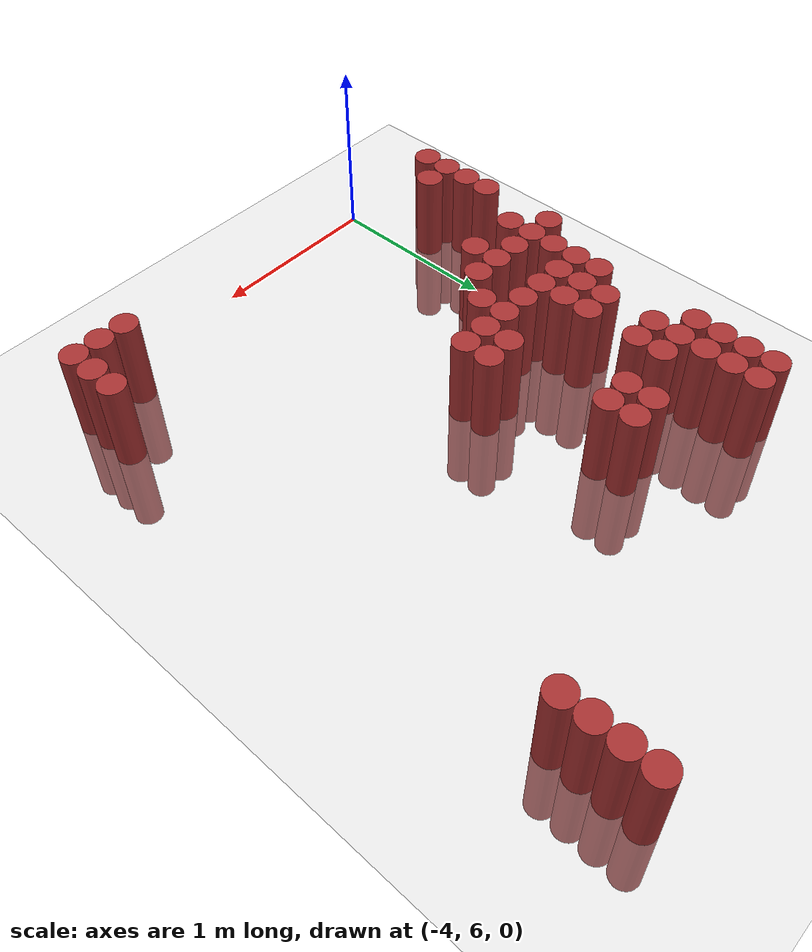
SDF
<sdf version="1.6">
 <world name="default">
  <model name="ground_plane">
   <static>1</static>
   <link name="link">
    <collision name="collision">
     <geometry><plane><normal>0 0 1</normal><size>100 100</size></plane></geometry>
     <surface><friction><ode><mu>100</mu><mu2>50</mu2></ode></friction></surface>
    </collision>
    <visual name="visual">
     <cast_shadows>0</cast_shadows>
     <geometry><plane><normal>0 0 1</normal><size>100 100</size></plane></geometry>
     <material>
      <script><uri>file://media/materials/scripts/gazebo.material</uri><name>Gazebo/Grey</name></script>
     </material>
    </visual>
   </link>
  </model>
  <model name="unit_cylinder_274">
   <static>1</static>
   <pose>-4.275000 6.375000 0.000000 0.000000 0.000000 0.000000</pose>
   <link name="link">
    <inertial>
     <mass>1</mass>
     <inertia><ixx>0.145833</ixx><ixy>0</ixy><ixz>0</ixz><iyy>0.145833</iyy><iyz>0</iyz><izz>0.125</izz></inertia>
    </inertial>
    <collision name="collision">
     <geometry><cylinder><radius>0.075000</radius><length>1</length></cylinder></geometry>
    </collision>
    <visual name="visual">
     <geometry><cylinder><radius>0.075000</radius><length>1</length></cylinder></geometry>
     <material>
      <ambient>0.648000 0.192000 0.192000 1</ambient>
      <diffuse>0.648000 0.192000 0.192000 1</diffuse>
     </material>
     <material>
      <script><name>Gazebo/Grey</name><uri>file://media/materials/scripts/gazebo.material</uri></script>
     </material>
    </visual>
   </link>
  </model>
  <model name="unit_cylinder_275">
   <static>1</static>
   <pose>-4.275000 6.525000 0.000000 0.000000 0.000000 0.000000</pose>
   <link name="link">
    <inertial>
     <mass>1</mass>
     <inertia><ixx>0.145833</ixx><ixy>0</ixy><ixz>0</ixz><iyy>0.145833</iyy><iyz>0</iyz><izz>0.125</izz></inertia>
    </inertial>
    <collision name="collision">
     <geometry><cylinder><radius>0.075000</radius><length>1</length></cylinder></geometry>
    </collision>
    <visual name="visual">
     <geometry><cylinder><radius>0.075000</radius><length>1</length></cylinder></geometry>
     <material>
      <ambient>0.648000 0.192000 0.192000 1</ambient>
      <diffuse>0.648000 0.192000 0.192000 1</diffuse>
     </material>
     <material>
      <script><name>Gazebo/Grey</name><uri>file://media/materials/scripts/gazebo.material</uri></script>
     </material>
    </visual>
   </link>
  </model>
  <model name="unit_cylinder_276">
   <static>1</static>
   <pose>-4.275000 6.675000 0.000000 0.000000 0.000000 0.000000</pose>
   <link name="link">
    <inertial>
     <mass>1</mass>
     <inertia><ixx>0.145833</ixx><ixy>0</ixy><ixz>0</ixz><iyy>0.145833</iyy><iyz>0</iyz><izz>0.125</izz></inertia>
    </inertial>
    <collision name="collision">
     <geometry><cylinder><radius>0.075000</radius><length>1</length></cylinder></geometry>
    </collision>
    <visual name="visual">
     <geometry><cylinder><radius>0.075000</radius><length>1</length></cylinder></geometry>
     <material>
      <ambient>0.648000 0.192000 0.192000 1</ambient>
      <diffuse>0.648000 0.192000 0.192000 1</diffuse>
     </material>
     <material>
      <script><name>Gazebo/Grey</name><uri>file://media/materials/scripts/gazebo.material</uri></script>
     </material>
    </visual>
   </link>
  </model>
  <model name="unit_cylinder_277">
   <static>1</static>
   <pose>-4.275000 6.825000 0.000000 0.000000 0.000000 0.000000</pose>
   <link name="link">
    <inertial>
     <mass>1</mass>
     <inertia><ixx>0.145833</ixx><ixy>0</ixy><ixz>0</ixz><iyy>0.145833</iyy><iyz>0</iyz><izz>0.125</izz></inertia>
    </inertial>
    <collision name="collision">
     <geometry><cylinder><radius>0.075000</radius><length>1</length></cylinder></geometry>
    </collision>
    <visual name="visual">
     <geometry><cylinder><radius>0.075000</radius><length>1</length></cylinder></geometry>
     <material>
      <ambient>0.648000 0.192000 0.192000 1</ambient>
      <diffuse>0.648000 0.192000 0.192000 1</diffuse>
     </material>
     <material>
      <script><name>Gazebo/Grey</name><uri>file://media/materials/scripts/gazebo.material</uri></script>
     </material>
    </visual>
   </link>
  </model>
  <model name="unit_cylinder_278">
   <static>1</static>
   <pose>-4.275000 7.275000 0.000000 0.000000 0.000000 0.000000</pose>
   <link name="link">
    <inertial>
     <mass>1</mass>
     <inertia><ixx>0.145833</ixx><ixy>0</ixy><ixz>0</ixz><iyy>0.145833</iyy><iyz>0</iyz><izz>0.125</izz></inertia>
    </inertial>
    <collision name="collision">
     <geometry><cylinder><radius>0.075000</radius><length>1</length></cylinder></geometry>
    </collision>
    <visual name="visual">
     <geometry><cylinder><radius>0.075000</radius><length>1</length></cylinder></geometry>
     <material>
      <ambient>0.648000 0.192000 0.192000 1</ambient>
      <diffuse>0.648000 0.192000 0.192000 1</diffuse>
     </material>
     <material>
      <script><name>Gazebo/Grey</name><uri>file://media/materials/scripts/gazebo.material</uri></script>
     </material>
    </visual>
   </link>
  </model>
  <model name="unit_cylinder_279">
   <static>1</static>
   <pose>-4.125000 6.525000 0.000000 0.000000 0.000000 0.000000</pose>
   <link name="link">
    <inertial>
     <mass>1</mass>
     <inertia><ixx>0.145833</ixx><ixy>0</ixy><ixz>0</ixz><iyy>0.145833</iyy><iyz>0</iyz><izz>0.125</izz></inertia>
    </inertial>
    <collision name="collision">
     <geometry><cylinder><radius>0.075000</radius><length>1</length></cylinder></geometry>
    </collision>
    <visual name="visual">
     <geometry><cylinder><radius>0.075000</radius><length>1</length></cylinder></geometry>
     <material>
      <ambient>0.648000 0.192000 0.192000 1</ambient>
      <diffuse>0.648000 0.192000 0.192000 1</diffuse>
     </material>
     <material>
      <script><name>Gazebo/Grey</name><uri>file://media/materials/scripts/gazebo.material</uri></script>
     </material>
    </visual>
   </link>
  </model>
  <model name="unit_cylinder_280">
   <static>1</static>
   <pose>-4.125000 7.125000 0.000000 0.000000 0.000000 0.000000</pose>
   <link name="link">
    <inertial>
     <mass>1</mass>
     <inertia><ixx>0.145833</ixx><ixy>0</ixy><ixz>0</ixz><iyy>0.145833</iyy><iyz>0</iyz><izz>0.125</izz></inertia>
    </inertial>
    <collision name="collision">
     <geometry><cylinder><radius>0.075000</radius><length>1</length></cylinder></geometry>
    </collision>
    <visual name="visual">
     <geometry><cylinder><radius>0.075000</radius><length>1</length></cylinder></geometry>
     <material>
      <ambient>0.648000 0.192000 0.192000 1</ambient>
      <diffuse>0.648000 0.192000 0.192000 1</diffuse>
     </material>
     <material>
      <script><name>Gazebo/Grey</name><uri>file://media/materials/scripts/gazebo.material</uri></script>
     </material>
    </visual>
   </link>
  </model>
  <model name="unit_cylinder_281">
   <static>1</static>
   <pose>-4.125000 7.275000 0.000000 0.000000 0.000000 0.000000</pose>
   <link name="link">
    <inertial>
     <mass>1</mass>
     <inertia><ixx>0.145833</ixx><ixy>0</ixy><ixz>0</ixz><iyy>0.145833</iyy><iyz>0</iyz><izz>0.125</izz></inertia>
    </inertial>
    <collision name="collision">
     <geometry><cylinder><radius>0.075000</radius><length>1</length></cylinder></geometry>
    </collision>
    <visual name="visual">
     <geometry><cylinder><radius>0.075000</radius><length>1</length></cylinder></geometry>
     <material>
      <ambient>0.648000 0.192000 0.192000 1</ambient>
      <diffuse>0.648000 0.192000 0.192000 1</diffuse>
     </material>
     <material>
      <script><name>Gazebo/Grey</name><uri>file://media/materials/scripts/gazebo.material</uri></script>
     </material>
    </visual>
   </link>
  </model>
  <model name="unit_cylinder_282">
   <static>1</static>
   <pose>-4.125000 7.425000 0.000000 0.000000 0.000000 0.000000</pose>
   <link name="link">
    <inertial>
     <mass>1</mass>
     <inertia><ixx>0.145833</ixx><ixy>0</ixy><ixz>0</ixz><iyy>0.145833</iyy><iyz>0</iyz><izz>0.125</izz></inertia>
    </inertial>
    <collision name="collision">
     <geometry><cylinder><radius>0.075000</radius><length>1</length></cylinder></geometry>
    </collision>
    <visual name="visual">
     <geometry><cylinder><radius>0.075000</radius><length>1</length></cylinder></geometry>
     <material>
      <ambient>0.648000 0.192000 0.192000 1</ambient>
      <diffuse>0.648000 0.192000 0.192000 1</diffuse>
     </material>
     <material>
      <script><name>Gazebo/Grey</name><uri>file://media/materials/scripts/gazebo.material</uri></script>
     </material>
    </visual>
   </link>
  </model>
  <model name="unit_cylinder_283">
   <static>1</static>
   <pose>-4.125000 7.575000 0.000000 0.000000 0.000000 0.000000</pose>
   <link name="link">
    <inertial>
     <mass>1</mass>
     <inertia><ixx>0.145833</ixx><ixy>0</ixy><ixz>0</ixz><iyy>0.145833</iyy><iyz>0</iyz><izz>0.125</izz></inertia>
    </inertial>
    <collision name="collision">
     <geometry><cylinder><radius>0.075000</radius><length>1</length></cylinder></geometry>
    </collision>
    <visual name="visual">
     <geometry><cylinder><radius>0.075000</radius><length>1</length></cylinder></geometry>
     <material>
      <ambient>0.648000 0.192000 0.192000 1</ambient>
      <diffuse>0.648000 0.192000 0.192000 1</diffuse>
     </material>
     <material>
      <script><name>Gazebo/Grey</name><uri>file://media/materials/scripts/gazebo.material</uri></script>
     </material>
    </visual>
   </link>
  </model>
  <model name="unit_cylinder_284">
   <static>1</static>
   <pose>-4.125000 7.725000 0.000000 0.000000 0.000000 0.000000</pose>
   <link name="link">
    <inertial>
     <mass>1</mass>
     <inertia><ixx>0.145833</ixx><ixy>0</ixy><ixz>0</ixz><iyy>0.145833</iyy><iyz>0</iyz><izz>0.125</izz></inertia>
    </inertial>
    <collision name="collision">
     <geometry><cylinder><radius>0.075000</radius><length>1</length></cylinder></geometry>
    </collision>
    <visual name="visual">
     <geometry><cylinder><radius>0.075000</radius><length>1</length></cylinder></geometry>
     <material>
      <ambient>0.648000 0.192000 0.192000 1</ambient>
      <diffuse>0.648000 0.192000 0.192000 1</diffuse>
     </material>
     <material>
      <script><name>Gazebo/Grey</name><uri>file://media/materials/scripts/gazebo.material</uri></script>
     </material>
    </visual>
   </link>
  </model>
  <model name="unit_cylinder_285">
   <static>1</static>
   <pose>-4.125000 8.325000 0.000000 0.000000 0.000000 0.000000</pose>
   <link name="link">
    <inertial>
     <mass>1</mass>
     <inertia><ixx>0.145833</ixx><ixy>0</ixy><ixz>0</ixz><iyy>0.145833</iyy><iyz>0</iyz><izz>0.125</izz></inertia>
    </inertial>
    <collision name="collision">
     <geometry><cylinder><radius>0.075000</radius><length>1</length></cylinder></geometry>
    </collision>
    <visual name="visual">
     <geometry><cylinder><radius>0.075000</radius><length>1</length></cylinder></geometry>
     <material>
      <ambient>0.648000 0.192000 0.192000 1</ambient>
      <diffuse>0.648000 0.192000 0.192000 1</diffuse>
     </material>
     <material>
      <script><name>Gazebo/Grey</name><uri>file://media/materials/scripts/gazebo.material</uri></script>
     </material>
    </visual>
   </link>
  </model>
  <model name="unit_cylinder_286">
   <static>1</static>
   <pose>-4.125000 8.475000 0.000000 0.000000 0.000000 0.000000</pose>
   <link name="link">
    <inertial>
     <mass>1</mass>
     <inertia><ixx>0.145833</ixx><ixy>0</ixy><ixz>0</ixz><iyy>0.145833</iyy><iyz>0</iyz><izz>0.125</izz></inertia>
    </inertial>
    <collision name="collision">
     <geometry><cylinder><radius>0.075000</radius><length>1</length></cylinder></geometry>
    </collision>
    <visual name="visual">
     <geometry><cylinder><radius>0.075000</radius><length>1</length></cylinder></geometry>
     <material>
      <ambient>0.648000 0.192000 0.192000 1</ambient>
      <diffuse>0.648000 0.192000 0.192000 1</diffuse>
     </material>
     <material>
      <script><name>Gazebo/Grey</name><uri>file://media/materials/scripts/gazebo.material</uri></script>
     </material>
    </visual>
   </link>
  </model>
  <model name="unit_cylinder_287">
   <static>1</static>
   <pose>-4.125000 8.625000 0.000000 0.000000 0.000000 0.000000</pose>
   <link name="link">
    <inertial>
     <mass>1</mass>
     <inertia><ixx>0.145833</ixx><ixy>0</ixy><ixz>0</ixz><iyy>0.145833</iyy><iyz>0</iyz><izz>0.125</izz></inertia>
    </inertial>
    <collision name="collision">
     <geometry><cylinder><radius>0.075000</radius><length>1</length></cylinder></geometry>
    </collision>
    <visual name="visual">
     <geometry><cylinder><radius>0.075000</radius><length>1</length></cylinder></geometry>
     <material>
      <ambient>0.648000 0.192000 0.192000 1</ambient>
      <diffuse>0.648000 0.192000 0.192000 1</diffuse>
     </material>
     <material>
      <script><name>Gazebo/Grey</name><uri>file://media/materials/scripts/gazebo.material</uri></script>
     </material>
    </visual>
   </link>
  </model>
  <model name="unit_cylinder_288">
   <static>1</static>
   <pose>-4.125000 8.775000 0.000000 0.000000 0.000000 0.000000</pose>
   <link name="link">
    <inertial>
     <mass>1</mass>
     <inertia><ixx>0.145833</ixx><ixy>0</ixy><ixz>0</ixz><iyy>0.145833</iyy><iyz>0</iyz><izz>0.125</izz></inertia>
    </inertial>
    <collision name="collision">
     <geometry><cylinder><radius>0.075000</radius><length>1</length></cylinder></geometry>
    </collision>
    <visual name="visual">
     <geometry><cylinder><radius>0.075000</radius><length>1</length></cylinder></geometry>
     <material>
      <ambient>0.648000 0.192000 0.192000 1</ambient>
      <diffuse>0.648000 0.192000 0.192000 1</diffuse>
     </material>
     <material>
      <script><name>Gazebo/Grey</name><uri>file://media/materials/scripts/gazebo.material</uri></script>
     </material>
    </visual>
   </link>
  </model>
  <model name="unit_cylinder_289">
   <static>1</static>
   <pose>-3.975000 7.275000 0.000000 0.000000 0.000000 0.000000</pose>
   <link name="link">
    <inertial>
     <mass>1</mass>
     <inertia><ixx>0.145833</ixx><ixy>0</ixy><ixz>0</ixz><iyy>0.145833</iyy><iyz>0</iyz><izz>0.125</izz></inertia>
    </inertial>
    <collision name="collision">
     <geometry><cylinder><radius>0.075000</radius><length>1</length></cylinder></geometry>
    </collision>
    <visual name="visual">
     <geometry><cylinder><radius>0.075000</radius><length>1</length></cylinder></geometry>
     <material>
      <ambient>0.648000 0.192000 0.192000 1</ambient>
      <diffuse>0.648000 0.192000 0.192000 1</diffuse>
     </material>
     <material>
      <script><name>Gazebo/Grey</name><uri>file://media/materials/scripts/gazebo.material</uri></script>
     </material>
    </visual>
   </link>
  </model>
  <model name="unit_cylinder_290">
   <static>1</static>
   <pose>-3.975000 7.575000 0.000000 0.000000 0.000000 0.000000</pose>
   <link name="link">
    <inertial>
     <mass>1</mass>
     <inertia><ixx>0.145833</ixx><ixy>0</ixy><ixz>0</ixz><iyy>0.145833</iyy><iyz>0</iyz><izz>0.125</izz></inertia>
    </inertial>
    <collision name="collision">
     <geometry><cylinder><radius>0.075000</radius><length>1</length></cylinder></geometry>
    </collision>
    <visual name="visual">
     <geometry><cylinder><radius>0.075000</radius><length>1</length></cylinder></geometry>
     <material>
      <ambient>0.648000 0.192000 0.192000 1</ambient>
      <diffuse>0.648000 0.192000 0.192000 1</diffuse>
     </material>
     <material>
      <script><name>Gazebo/Grey</name><uri>file://media/materials/scripts/gazebo.material</uri></script>
     </material>
    </visual>
   </link>
  </model>
  <model name="unit_cylinder_291">
   <static>1</static>
   <pose>-3.975000 7.725000 0.000000 0.000000 0.000000 0.000000</pose>
   <link name="link">
    <inertial>
     <mass>1</mass>
     <inertia><ixx>0.145833</ixx><ixy>0</ixy><ixz>0</ixz><iyy>0.145833</iyy><iyz>0</iyz><izz>0.125</izz></inertia>
    </inertial>
    <collision name="collision">
     <geometry><cylinder><radius>0.075000</radius><length>1</length></cylinder></geometry>
    </collision>
    <visual name="visual">
     <geometry><cylinder><radius>0.075000</radius><length>1</length></cylinder></geometry>
     <material>
      <ambient>0.648000 0.192000 0.192000 1</ambient>
      <diffuse>0.648000 0.192000 0.192000 1</diffuse>
     </material>
     <material>
      <script><name>Gazebo/Grey</name><uri>file://media/materials/scripts/gazebo.material</uri></script>
     </material>
    </visual>
   </link>
  </model>
  <model name="unit_cylinder_292">
   <static>1</static>
   <pose>-3.975000 7.875000 0.000000 0.000000 0.000000 0.000000</pose>
   <link name="link">
    <inertial>
     <mass>1</mass>
     <inertia><ixx>0.145833</ixx><ixy>0</ixy><ixz>0</ixz><iyy>0.145833</iyy><iyz>0</iyz><izz>0.125</izz></inertia>
    </inertial>
    <collision name="collision">
     <geometry><cylinder><radius>0.075000</radius><length>1</length></cylinder></geometry>
    </collision>
    <visual name="visual">
     <geometry><cylinder><radius>0.075000</radius><length>1</length></cylinder></geometry>
     <material>
      <ambient>0.648000 0.192000 0.192000 1</ambient>
      <diffuse>0.648000 0.192000 0.192000 1</diffuse>
     </material>
     <material>
      <script><name>Gazebo/Grey</name><uri>file://media/materials/scripts/gazebo.material</uri></script>
     </material>
    </visual>
   </link>
  </model>
  <model name="unit_cylinder_293">
   <static>1</static>
   <pose>-3.975000 8.175000 0.000000 0.000000 0.000000 0.000000</pose>
   <link name="link">
    <inertial>
     <mass>1</mass>
     <inertia><ixx>0.145833</ixx><ixy>0</ixy><ixz>0</ixz><iyy>0.145833</iyy><iyz>0</iyz><izz>0.125</izz></inertia>
    </inertial>
    <collision name="collision">
     <geometry><cylinder><radius>0.075000</radius><length>1</length></cylinder></geometry>
    </collision>
    <visual name="visual">
     <geometry><cylinder><radius>0.075000</radius><length>1</length></cylinder></geometry>
     <material>
      <ambient>0.648000 0.192000 0.192000 1</ambient>
      <diffuse>0.648000 0.192000 0.192000 1</diffuse>
     </material>
     <material>
      <script><name>Gazebo/Grey</name><uri>file://media/materials/scripts/gazebo.material</uri></script>
     </material>
    </visual>
   </link>
  </model>
  <model name="unit_cylinder_294">
   <static>1</static>
   <pose>-3.975000 8.325000 0.000000 0.000000 0.000000 0.000000</pose>
   <link name="link">
    <inertial>
     <mass>1</mass>
     <inertia><ixx>0.145833</ixx><ixy>0</ixy><ixz>0</ixz><iyy>0.145833</iyy><iyz>0</iyz><izz>0.125</izz></inertia>
    </inertial>
    <collision name="collision">
     <geometry><cylinder><radius>0.075000</radius><length>1</length></cylinder></geometry>
    </collision>
    <visual name="visual">
     <geometry><cylinder><radius>0.075000</radius><length>1</length></cylinder></geometry>
     <material>
      <ambient>0.648000 0.192000 0.192000 1</ambient>
      <diffuse>0.648000 0.192000 0.192000 1</diffuse>
     </material>
     <material>
      <script><name>Gazebo/Grey</name><uri>file://media/materials/scripts/gazebo.material</uri></script>
     </material>
    </visual>
   </link>
  </model>
  <model name="unit_cylinder_295">
   <static>1</static>
   <pose>-3.975000 8.475000 0.000000 0.000000 0.000000 0.000000</pose>
   <link name="link">
    <inertial>
     <mass>1</mass>
     <inertia><ixx>0.145833</ixx><ixy>0</ixy><ixz>0</ixz><iyy>0.145833</iyy><iyz>0</iyz><izz>0.125</izz></inertia>
    </inertial>
    <collision name="collision">
     <geometry><cylinder><radius>0.075000</radius><length>1</length></cylinder></geometry>
    </collision>
    <visual name="visual">
     <geometry><cylinder><radius>0.075000</radius><length>1</length></cylinder></geometry>
     <material>
      <ambient>0.648000 0.192000 0.192000 1</ambient>
      <diffuse>0.648000 0.192000 0.192000 1</diffuse>
     </material>
     <material>
      <script><name>Gazebo/Grey</name><uri>file://media/materials/scripts/gazebo.material</uri></script>
     </material>
    </visual>
   </link>
  </model>
  <model name="unit_cylinder_296">
   <static>1</static>
   <pose>-3.975000 8.625000 0.000000 0.000000 0.000000 0.000000</pose>
   <link name="link">
    <inertial>
     <mass>1</mass>
     <inertia><ixx>0.145833</ixx><ixy>0</ixy><ixz>0</ixz><iyy>0.145833</iyy><iyz>0</iyz><izz>0.125</izz></inertia>
    </inertial>
    <collision name="collision">
     <geometry><cylinder><radius>0.075000</radius><length>1</length></cylinder></geometry>
    </collision>
    <visual name="visual">
     <geometry><cylinder><radius>0.075000</radius><length>1</length></cylinder></geometry>
     <material>
      <ambient>0.648000 0.192000 0.192000 1</ambient>
      <diffuse>0.648000 0.192000 0.192000 1</diffuse>
     </material>
     <material>
      <script><name>Gazebo/Grey</name><uri>file://media/materials/scripts/gazebo.material</uri></script>
     </material>
    </visual>
   </link>
  </model>
  <model name="unit_cylinder_297">
   <static>1</static>
   <pose>-3.975000 8.775000 0.000000 0.000000 0.000000 0.000000</pose>
   <link name="link">
    <inertial>
     <mass>1</mass>
     <inertia><ixx>0.145833</ixx><ixy>0</ixy><ixz>0</ixz><iyy>0.145833</iyy><iyz>0</iyz><izz>0.125</izz></inertia>
    </inertial>
    <collision name="collision">
     <geometry><cylinder><radius>0.075000</radius><length>1</length></cylinder></geometry>
    </collision>
    <visual name="visual">
     <geometry><cylinder><radius>0.075000</radius><length>1</length></cylinder></geometry>
     <material>
      <ambient>0.648000 0.192000 0.192000 1</ambient>
      <diffuse>0.648000 0.192000 0.192000 1</diffuse>
     </material>
     <material>
      <script><name>Gazebo/Grey</name><uri>file://media/materials/scripts/gazebo.material</uri></script>
     </material>
    </visual>
   </link>
  </model>
  <model name="unit_cylinder_298">
   <static>1</static>
   <pose>-3.825000 7.125000 0.000000 0.000000 0.000000 0.000000</pose>
   <link name="link">
    <inertial>
     <mass>1</mass>
     <inertia><ixx>0.145833</ixx><ixy>0</ixy><ixz>0</ixz><iyy>0.145833</iyy><iyz>0</iyz><izz>0.125</izz></inertia>
    </inertial>
    <collision name="collision">
     <geometry><cylinder><radius>0.075000</radius><length>1</length></cylinder></geometry>
    </collision>
    <visual name="visual">
     <geometry><cylinder><radius>0.075000</radius><length>1</length></cylinder></geometry>
     <material>
      <ambient>0.648000 0.192000 0.192000 1</ambient>
      <diffuse>0.648000 0.192000 0.192000 1</diffuse>
     </material>
     <material>
      <script><name>Gazebo/Grey</name><uri>file://media/materials/scripts/gazebo.material</uri></script>
     </material>
    </visual>
   </link>
  </model>
  <model name="unit_cylinder_299">
   <static>1</static>
   <pose>-3.825000 7.275000 0.000000 0.000000 0.000000 0.000000</pose>
   <link name="link">
    <inertial>
     <mass>1</mass>
     <inertia><ixx>0.145833</ixx><ixy>0</ixy><ixz>0</ixz><iyy>0.145833</iyy><iyz>0</iyz><izz>0.125</izz></inertia>
    </inertial>
    <collision name="collision">
     <geometry><cylinder><radius>0.075000</radius><length>1</length></cylinder></geometry>
    </collision>
    <visual name="visual">
     <geometry><cylinder><radius>0.075000</radius><length>1</length></cylinder></geometry>
     <material>
      <ambient>0.648000 0.192000 0.192000 1</ambient>
      <diffuse>0.648000 0.192000 0.192000 1</diffuse>
     </material>
     <material>
      <script><name>Gazebo/Grey</name><uri>file://media/materials/scripts/gazebo.material</uri></script>
     </material>
    </visual>
   </link>
  </model>
  <model name="unit_cylinder_300">
   <static>1</static>
   <pose>-3.825000 7.575000 0.000000 0.000000 0.000000 0.000000</pose>
   <link name="link">
    <inertial>
     <mass>1</mass>
     <inertia><ixx>0.145833</ixx><ixy>0</ixy><ixz>0</ixz><iyy>0.145833</iyy><iyz>0</iyz><izz>0.125</izz></inertia>
    </inertial>
    <collision name="collision">
     <geometry><cylinder><radius>0.075000</radius><length>1</length></cylinder></geometry>
    </collision>
    <visual name="visual">
     <geometry><cylinder><radius>0.075000</radius><length>1</length></cylinder></geometry>
     <material>
      <ambient>0.648000 0.192000 0.192000 1</ambient>
      <diffuse>0.648000 0.192000 0.192000 1</diffuse>
     </material>
     <material>
      <script><name>Gazebo/Grey</name><uri>file://media/materials/scripts/gazebo.material</uri></script>
     </material>
    </visual>
   </link>
  </model>
  <model name="unit_cylinder_301">
   <static>1</static>
   <pose>-3.825000 7.725000 0.000000 0.000000 0.000000 0.000000</pose>
   <link name="link">
    <inertial>
     <mass>1</mass>
     <inertia><ixx>0.145833</ixx><ixy>0</ixy><ixz>0</ixz><iyy>0.145833</iyy><iyz>0</iyz><izz>0.125</izz></inertia>
    </inertial>
    <collision name="collision">
     <geometry><cylinder><radius>0.075000</radius><length>1</length></cylinder></geometry>
    </collision>
    <visual name="visual">
     <geometry><cylinder><radius>0.075000</radius><length>1</length></cylinder></geometry>
     <material>
      <ambient>0.648000 0.192000 0.192000 1</ambient>
      <diffuse>0.648000 0.192000 0.192000 1</diffuse>
     </material>
     <material>
      <script><name>Gazebo/Grey</name><uri>file://media/materials/scripts/gazebo.material</uri></script>
     </material>
    </visual>
   </link>
  </model>
  <model name="unit_cylinder_302">
   <static>1</static>
   <pose>-3.825000 7.875000 0.000000 0.000000 0.000000 0.000000</pose>
   <link name="link">
    <inertial>
     <mass>1</mass>
     <inertia><ixx>0.145833</ixx><ixy>0</ixy><ixz>0</ixz><iyy>0.145833</iyy><iyz>0</iyz><izz>0.125</izz></inertia>
    </inertial>
    <collision name="collision">
     <geometry><cylinder><radius>0.075000</radius><length>1</length></cylinder></geometry>
    </collision>
    <visual name="visual">
     <geometry><cylinder><radius>0.075000</radius><length>1</length></cylinder></geometry>
     <material>
      <ambient>0.648000 0.192000 0.192000 1</ambient>
      <diffuse>0.648000 0.192000 0.192000 1</diffuse>
     </material>
     <material>
      <script><name>Gazebo/Grey</name><uri>file://media/materials/scripts/gazebo.material</uri></script>
     </material>
    </visual>
   </link>
  </model>
  <model name="unit_cylinder_303">
   <static>1</static>
   <pose>-3.825000 8.175000 0.000000 0.000000 0.000000 0.000000</pose>
   <link name="link">
    <inertial>
     <mass>1</mass>
     <inertia><ixx>0.145833</ixx><ixy>0</ixy><ixz>0</ixz><iyy>0.145833</iyy><iyz>0</iyz><izz>0.125</izz></inertia>
    </inertial>
    <collision name="collision">
     <geometry><cylinder><radius>0.075000</radius><length>1</length></cylinder></geometry>
    </collision>
    <visual name="visual">
     <geometry><cylinder><radius>0.075000</radius><length>1</length></cylinder></geometry>
     <material>
      <ambient>0.648000 0.192000 0.192000 1</ambient>
      <diffuse>0.648000 0.192000 0.192000 1</diffuse>
     </material>
     <material>
      <script><name>Gazebo/Grey</name><uri>file://media/materials/scripts/gazebo.material</uri></script>
     </material>
    </visual>
   </link>
  </model>
  <model name="unit_cylinder_304">
   <static>1</static>
   <pose>-3.825000 8.325000 0.000000 0.000000 0.000000 0.000000</pose>
   <link name="link">
    <inertial>
     <mass>1</mass>
     <inertia><ixx>0.145833</ixx><ixy>0</ixy><ixz>0</ixz><iyy>0.145833</iyy><iyz>0</iyz><izz>0.125</izz></inertia>
    </inertial>
    <collision name="collision">
     <geometry><cylinder><radius>0.075000</radius><length>1</length></cylinder></geometry>
    </collision>
    <visual name="visual">
     <geometry><cylinder><radius>0.075000</radius><length>1</length></cylinder></geometry>
     <material>
      <ambient>0.648000 0.192000 0.192000 1</ambient>
      <diffuse>0.648000 0.192000 0.192000 1</diffuse>
     </material>
     <material>
      <script><name>Gazebo/Grey</name><uri>file://media/materials/scripts/gazebo.material</uri></script>
     </material>
    </visual>
   </link>
  </model>
  <model name="unit_cylinder_305">
   <static>1</static>
   <pose>-3.675000 7.275000 0.000000 0.000000 0.000000 0.000000</pose>
   <link name="link">
    <inertial>
     <mass>1</mass>
     <inertia><ixx>0.145833</ixx><ixy>0</ixy><ixz>0</ixz><iyy>0.145833</iyy><iyz>0</iyz><izz>0.125</izz></inertia>
    </inertial>
    <collision name="collision">
     <geometry><cylinder><radius>0.075000</radius><length>1</length></cylinder></geometry>
    </collision>
    <visual name="visual">
     <geometry><cylinder><radius>0.075000</radius><length>1</length></cylinder></geometry>
     <material>
      <ambient>0.648000 0.192000 0.192000 1</ambient>
      <diffuse>0.648000 0.192000 0.192000 1</diffuse>
     </material>
     <material>
      <script><name>Gazebo/Grey</name><uri>file://media/materials/scripts/gazebo.material</uri></script>
     </material>
    </visual>
   </link>
  </model>
  <model name="unit_cylinder_306">
   <static>1</static>
   <pose>-3.675000 7.575000 0.000000 0.000000 0.000000 0.000000</pose>
   <link name="link">
    <inertial>
     <mass>1</mass>
     <inertia><ixx>0.145833</ixx><ixy>0</ixy><ixz>0</ixz><iyy>0.145833</iyy><iyz>0</iyz><izz>0.125</izz></inertia>
    </inertial>
    <collision name="collision">
     <geometry><cylinder><radius>0.075000</radius><length>1</length></cylinder></geometry>
    </collision>
    <visual name="visual">
     <geometry><cylinder><radius>0.075000</radius><length>1</length></cylinder></geometry>
     <material>
      <ambient>0.648000 0.192000 0.192000 1</ambient>
      <diffuse>0.648000 0.192000 0.192000 1</diffuse>
     </material>
     <material>
      <script><name>Gazebo/Grey</name><uri>file://media/materials/scripts/gazebo.material</uri></script>
     </material>
    </visual>
   </link>
  </model>
  <model name="unit_cylinder_307">
   <static>1</static>
   <pose>-3.525000 7.425000 0.000000 0.000000 0.000000 0.000000</pose>
   <link name="link">
    <inertial>
     <mass>1</mass>
     <inertia><ixx>0.145833</ixx><ixy>0</ixy><ixz>0</ixz><iyy>0.145833</iyy><iyz>0</iyz><izz>0.125</izz></inertia>
    </inertial>
    <collision name="collision">
     <geometry><cylinder><radius>0.075000</radius><length>1</length></cylinder></geometry>
    </collision>
    <visual name="visual">
     <geometry><cylinder><radius>0.075000</radius><length>1</length></cylinder></geometry>
     <material>
      <ambient>0.648000 0.192000 0.192000 1</ambient>
      <diffuse>0.648000 0.192000 0.192000 1</diffuse>
     </material>
     <material>
      <script><name>Gazebo/Grey</name><uri>file://media/materials/scripts/gazebo.material</uri></script>
     </material>
    </visual>
   </link>
  </model>
  <model name="unit_cylinder_308">
   <static>1</static>
   <pose>-3.525000 7.575000 0.000000 0.000000 0.000000 0.000000</pose>
   <link name="link">
    <inertial>
     <mass>1</mass>
     <inertia><ixx>0.145833</ixx><ixy>0</ixy><ixz>0</ixz><iyy>0.145833</iyy><iyz>0</iyz><izz>0.125</izz></inertia>
    </inertial>
    <collision name="collision">
     <geometry><cylinder><radius>0.075000</radius><length>1</length></cylinder></geometry>
    </collision>
    <visual name="visual">
     <geometry><cylinder><radius>0.075000</radius><length>1</length></cylinder></geometry>
     <material>
      <ambient>0.648000 0.192000 0.192000 1</ambient>
      <diffuse>0.648000 0.192000 0.192000 1</diffuse>
     </material>
     <material>
      <script><name>Gazebo/Grey</name><uri>file://media/materials/scripts/gazebo.material</uri></script>
     </material>
    </visual>
   </link>
  </model>
  <model name="unit_cylinder_309">
   <static>1</static>
   <pose>-3.525000 8.325000 0.000000 0.000000 0.000000 0.000000</pose>
   <link name="link">
    <inertial>
     <mass>1</mass>
     <inertia><ixx>0.145833</ixx><ixy>0</ixy><ixz>0</ixz><iyy>0.145833</iyy><iyz>0</iyz><izz>0.125</izz></inertia>
    </inertial>
    <collision name="collision">
     <geometry><cylinder><radius>0.075000</radius><length>1</length></cylinder></geometry>
    </collision>
    <visual name="visual">
     <geometry><cylinder><radius>0.075000</radius><length>1</length></cylinder></geometry>
     <material>
      <ambient>0.648000 0.192000 0.192000 1</ambient>
      <diffuse>0.648000 0.192000 0.192000 1</diffuse>
     </material>
     <material>
      <script><name>Gazebo/Grey</name><uri>file://media/materials/scripts/gazebo.material</uri></script>
     </material>
    </visual>
   </link>
  </model>
  <model name="unit_cylinder_310">
   <static>1</static>
   <pose>-3.525000 8.475000 0.000000 0.000000 0.000000 0.000000</pose>
   <link name="link">
    <inertial>
     <mass>1</mass>
     <inertia><ixx>0.145833</ixx><ixy>0</ixy><ixz>0</ixz><iyy>0.145833</iyy><iyz>0</iyz><izz>0.125</izz></inertia>
    </inertial>
    <collision name="collision">
     <geometry><cylinder><radius>0.075000</radius><length>1</length></cylinder></geometry>
    </collision>
    <visual name="visual">
     <geometry><cylinder><radius>0.075000</radius><length>1</length></cylinder></geometry>
     <material>
      <ambient>0.648000 0.192000 0.192000 1</ambient>
      <diffuse>0.648000 0.192000 0.192000 1</diffuse>
     </material>
     <material>
      <script><name>Gazebo/Grey</name><uri>file://media/materials/scripts/gazebo.material</uri></script>
     </material>
    </visual>
   </link>
  </model>
  <model name="unit_cylinder_311">
   <static>1</static>
   <pose>-3.375000 7.575000 0.000000 0.000000 0.000000 0.000000</pose>
   <link name="link">
    <inertial>
     <mass>1</mass>
     <inertia><ixx>0.145833</ixx><ixy>0</ixy><ixz>0</ixz><iyy>0.145833</iyy><iyz>0</iyz><izz>0.125</izz></inertia>
    </inertial>
    <collision name="collision">
     <geometry><cylinder><radius>0.075000</radius><length>1</length></cylinder></geometry>
    </collision>
    <visual name="visual">
     <geometry><cylinder><radius>0.075000</radius><length>1</length></cylinder></geometry>
     <material>
      <ambient>0.648000 0.192000 0.192000 1</ambient>
      <diffuse>0.648000 0.192000 0.192000 1</diffuse>
     </material>
     <material>
      <script><name>Gazebo/Grey</name><uri>file://media/materials/scripts/gazebo.material</uri></script>
     </material>
    </visual>
   </link>
  </model>
  <model name="unit_cylinder_312">
   <static>1</static>
   <pose>-3.375000 7.725000 0.000000 0.000000 0.000000 0.000000</pose>
   <link name="link">
    <inertial>
     <mass>1</mass>
     <inertia><ixx>0.145833</ixx><ixy>0</ixy><ixz>0</ixz><iyy>0.145833</iyy><iyz>0</iyz><izz>0.125</izz></inertia>
    </inertial>
    <collision name="collision">
     <geometry><cylinder><radius>0.075000</radius><length>1</length></cylinder></geometry>
    </collision>
    <visual name="visual">
     <geometry><cylinder><radius>0.075000</radius><length>1</length></cylinder></geometry>
     <material>
      <ambient>0.648000 0.192000 0.192000 1</ambient>
      <diffuse>0.648000 0.192000 0.192000 1</diffuse>
     </material>
     <material>
      <script><name>Gazebo/Grey</name><uri>file://media/materials/scripts/gazebo.material</uri></script>
     </material>
    </visual>
   </link>
  </model>
  <model name="unit_cylinder_313">
   <static>1</static>
   <pose>-3.375000 8.325000 0.000000 0.000000 0.000000 0.000000</pose>
   <link name="link">
    <inertial>
     <mass>1</mass>
     <inertia><ixx>0.145833</ixx><ixy>0</ixy><ixz>0</ixz><iyy>0.145833</iyy><iyz>0</iyz><izz>0.125</izz></inertia>
    </inertial>
    <collision name="collision">
     <geometry><cylinder><radius>0.075000</radius><length>1</length></cylinder></geometry>
    </collision>
    <visual name="visual">
     <geometry><cylinder><radius>0.075000</radius><length>1</length></cylinder></geometry>
     <material>
      <ambient>0.648000 0.192000 0.192000 1</ambient>
      <diffuse>0.648000 0.192000 0.192000 1</diffuse>
     </material>
     <material>
      <script><name>Gazebo/Grey</name><uri>file://media/materials/scripts/gazebo.material</uri></script>
     </material>
    </visual>
   </link>
  </model>
  <model name="unit_cylinder_314">
   <static>1</static>
   <pose>-3.375000 8.475000 0.000000 0.000000 0.000000 0.000000</pose>
   <link name="link">
    <inertial>
     <mass>1</mass>
     <inertia><ixx>0.145833</ixx><ixy>0</ixy><ixz>0</ixz><iyy>0.145833</iyy><iyz>0</iyz><izz>0.125</izz></inertia>
    </inertial>
    <collision name="collision">
     <geometry><cylinder><radius>0.075000</radius><length>1</length></cylinder></geometry>
    </collision>
    <visual name="visual">
     <geometry><cylinder><radius>0.075000</radius><length>1</length></cylinder></geometry>
     <material>
      <ambient>0.648000 0.192000 0.192000 1</ambient>
      <diffuse>0.648000 0.192000 0.192000 1</diffuse>
     </material>
     <material>
      <script><name>Gazebo/Grey</name><uri>file://media/materials/scripts/gazebo.material</uri></script>
     </material>
    </visual>
   </link>
  </model>
  <model name="unit_cylinder_315">
   <static>1</static>
   <pose>-3.225000 7.575000 0.000000 0.000000 0.000000 0.000000</pose>
   <link name="link">
    <inertial>
     <mass>1</mass>
     <inertia><ixx>0.145833</ixx><ixy>0</ixy><ixz>0</ixz><iyy>0.145833</iyy><iyz>0</iyz><izz>0.125</izz></inertia>
    </inertial>
    <collision name="collision">
     <geometry><cylinder><radius>0.075000</radius><length>1</length></cylinder></geometry>
    </collision>
    <visual name="visual">
     <geometry><cylinder><radius>0.075000</radius><length>1</length></cylinder></geometry>
     <material>
      <ambient>0.648000 0.192000 0.192000 1</ambient>
      <diffuse>0.648000 0.192000 0.192000 1</diffuse>
     </material>
     <material>
      <script><name>Gazebo/Grey</name><uri>file://media/materials/scripts/gazebo.material</uri></script>
     </material>
    </visual>
   </link>
  </model>
  <model name="unit_cylinder_316">
   <static>1</static>
   <pose>-3.225000 7.725000 0.000000 0.000000 0.000000 0.000000</pose>
   <link name="link">
    <inertial>
     <mass>1</mass>
     <inertia><ixx>0.145833</ixx><ixy>0</ixy><ixz>0</ixz><iyy>0.145833</iyy><iyz>0</iyz><izz>0.125</izz></inertia>
    </inertial>
    <collision name="collision">
     <geometry><cylinder><radius>0.075000</radius><length>1</length></cylinder></geometry>
    </collision>
    <visual name="visual">
     <geometry><cylinder><radius>0.075000</radius><length>1</length></cylinder></geometry>
     <material>
      <ambient>0.648000 0.192000 0.192000 1</ambient>
      <diffuse>0.648000 0.192000 0.192000 1</diffuse>
     </material>
     <material>
      <script><name>Gazebo/Grey</name><uri>file://media/materials/scripts/gazebo.material</uri></script>
     </material>
    </visual>
   </link>
  </model>
  <model name="unit_cylinder_333">
   <static>1</static>
   <pose>-2.175000 6.225000 0.000000 0.000000 0.000000 0.000000</pose>
   <link name="link">
    <inertial>
     <mass>1</mass>
     <inertia><ixx>0.145833</ixx><ixy>0</ixy><ixz>0</ixz><iyy>0.145833</iyy><iyz>0</iyz><izz>0.125</izz></inertia>
    </inertial>
    <collision name="collision">
     <geometry><cylinder><radius>0.075000</radius><length>1</length></cylinder></geometry>
    </collision>
    <visual name="visual">
     <geometry><cylinder><radius>0.075000</radius><length>1</length></cylinder></geometry>
     <material>
      <ambient>0.648000 0.192000 0.192000 1</ambient>
      <diffuse>0.648000 0.192000 0.192000 1</diffuse>
     </material>
     <material>
      <script><name>Gazebo/Grey</name><uri>file://media/materials/scripts/gazebo.material</uri></script>
     </material>
    </visual>
   </link>
  </model>
  <model name="unit_cylinder_335">
   <static>1</static>
   <pose>-2.025000 6.225000 0.000000 0.000000 0.000000 0.000000</pose>
   <link name="link">
    <inertial>
     <mass>1</mass>
     <inertia><ixx>0.145833</ixx><ixy>0</ixy><ixz>0</ixz><iyy>0.145833</iyy><iyz>0</iyz><izz>0.125</izz></inertia>
    </inertial>
    <collision name="collision">
     <geometry><cylinder><radius>0.075000</radius><length>1</length></cylinder></geometry>
    </collision>
    <visual name="visual">
     <geometry><cylinder><radius>0.075000</radius><length>1</length></cylinder></geometry>
     <material>
      <ambient>0.648000 0.192000 0.192000 1</ambient>
      <diffuse>0.648000 0.192000 0.192000 1</diffuse>
     </material>
     <material>
      <script><name>Gazebo/Grey</name><uri>file://media/materials/scripts/gazebo.material</uri></script>
     </material>
    </visual>
   </link>
  </model>
  <model name="unit_cylinder_336">
   <static>1</static>
   <pose>-2.025000 9.075000 0.000000 0.000000 0.000000 0.000000</pose>
   <link name="link">
    <inertial>
     <mass>1</mass>
     <inertia><ixx>0.145833</ixx><ixy>0</ixy><ixz>0</ixz><iyy>0.145833</iyy><iyz>0</iyz><izz>0.125</izz></inertia>
    </inertial>
    <collision name="collision">
     <geometry><cylinder><radius>0.075000</radius><length>1</length></cylinder></geometry>
    </collision>
    <visual name="visual">
     <geometry><cylinder><radius>0.075000</radius><length>1</length></cylinder></geometry>
     <material>
      <ambient>0.648000 0.192000 0.192000 1</ambient>
      <diffuse>0.648000 0.192000 0.192000 1</diffuse>
     </material>
     <material>
      <script><name>Gazebo/Grey</name><uri>file://media/materials/scripts/gazebo.material</uri></script>
     </material>
    </visual>
   </link>
  </model>
  <model name="unit_cylinder_337">
   <static>1</static>
   <pose>-2.025000 9.225000 0.000000 0.000000 0.000000 0.000000</pose>
   <link name="link">
    <inertial>
     <mass>1</mass>
     <inertia><ixx>0.145833</ixx><ixy>0</ixy><ixz>0</ixz><iyy>0.145833</iyy><iyz>0</iyz><izz>0.125</izz></inertia>
    </inertial>
    <collision name="collision">
     <geometry><cylinder><radius>0.075000</radius><length>1</length></cylinder></geometry>
    </collision>
    <visual name="visual">
     <geometry><cylinder><radius>0.075000</radius><length>1</length></cylinder></geometry>
     <material>
      <ambient>0.648000 0.192000 0.192000 1</ambient>
      <diffuse>0.648000 0.192000 0.192000 1</diffuse>
     </material>
     <material>
      <script><name>Gazebo/Grey</name><uri>file://media/materials/scripts/gazebo.material</uri></script>
     </material>
    </visual>
   </link>
  </model>
  <model name="unit_cylinder_338">
   <static>1</static>
   <pose>-2.025000 9.375000 0.000000 0.000000 0.000000 0.000000</pose>
   <link name="link">
    <inertial>
     <mass>1</mass>
     <inertia><ixx>0.145833</ixx><ixy>0</ixy><ixz>0</ixz><iyy>0.145833</iyy><iyz>0</iyz><izz>0.125</izz></inertia>
    </inertial>
    <collision name="collision">
     <geometry><cylinder><radius>0.075000</radius><length>1</length></cylinder></geometry>
    </collision>
    <visual name="visual">
     <geometry><cylinder><radius>0.075000</radius><length>1</length></cylinder></geometry>
     <material>
      <ambient>0.648000 0.192000 0.192000 1</ambient>
      <diffuse>0.648000 0.192000 0.192000 1</diffuse>
     </material>
     <material>
      <script><name>Gazebo/Grey</name><uri>file://media/materials/scripts/gazebo.material</uri></script>
     </material>
    </visual>
   </link>
  </model>
  <model name="unit_cylinder_339">
   <static>1</static>
   <pose>-2.025000 9.525000 0.000000 0.000000 0.000000 0.000000</pose>
   <link name="link">
    <inertial>
     <mass>1</mass>
     <inertia><ixx>0.145833</ixx><ixy>0</ixy><ixz>0</ixz><iyy>0.145833</iyy><iyz>0</iyz><izz>0.125</izz></inertia>
    </inertial>
    <collision name="collision">
     <geometry><cylinder><radius>0.075000</radius><length>1</length></cylinder></geometry>
    </collision>
    <visual name="visual">
     <geometry><cylinder><radius>0.075000</radius><length>1</length></cylinder></geometry>
     <material>
      <ambient>0.648000 0.192000 0.192000 1</ambient>
      <diffuse>0.648000 0.192000 0.192000 1</diffuse>
     </material>
     <material>
      <script><name>Gazebo/Grey</name><uri>file://media/materials/scripts/gazebo.material</uri></script>
     </material>
    </visual>
   </link>
  </model>
  <model name="unit_cylinder_341">
   <static>1</static>
   <pose>-1.875000 6.225000 0.000000 0.000000 0.000000 0.000000</pose>
   <link name="link">
    <inertial>
     <mass>1</mass>
     <inertia><ixx>0.145833</ixx><ixy>0</ixy><ixz>0</ixz><iyy>0.145833</iyy><iyz>0</iyz><izz>0.125</izz></inertia>
    </inertial>
    <collision name="collision">
     <geometry><cylinder><radius>0.075000</radius><length>1</length></cylinder></geometry>
    </collision>
    <visual name="visual">
     <geometry><cylinder><radius>0.075000</radius><length>1</length></cylinder></geometry>
     <material>
      <ambient>0.648000 0.192000 0.192000 1</ambient>
      <diffuse>0.648000 0.192000 0.192000 1</diffuse>
     </material>
     <material>
      <script><name>Gazebo/Grey</name><uri>file://media/materials/scripts/gazebo.material</uri></script>
     </material>
    </visual>
   </link>
  </model>
  <model name="unit_cylinder_342">
   <static>1</static>
   <pose>-1.875000 6.375000 0.000000 0.000000 0.000000 0.000000</pose>
   <link name="link">
    <inertial>
     <mass>1</mass>
     <inertia><ixx>0.145833</ixx><ixy>0</ixy><ixz>0</ixz><iyy>0.145833</iyy><iyz>0</iyz><izz>0.125</izz></inertia>
    </inertial>
    <collision name="collision">
     <geometry><cylinder><radius>0.075000</radius><length>1</length></cylinder></geometry>
    </collision>
    <visual name="visual">
     <geometry><cylinder><radius>0.075000</radius><length>1</length></cylinder></geometry>
     <material>
      <ambient>0.648000 0.192000 0.192000 1</ambient>
      <diffuse>0.648000 0.192000 0.192000 1</diffuse>
     </material>
     <material>
      <script><name>Gazebo/Grey</name><uri>file://media/materials/scripts/gazebo.material</uri></script>
     </material>
    </visual>
   </link>
  </model>
  <model name="unit_cylinder_343">
   <static>1</static>
   <pose>-1.875000 6.525000 0.000000 0.000000 0.000000 0.000000</pose>
   <link name="link">
    <inertial>
     <mass>1</mass>
     <inertia><ixx>0.145833</ixx><ixy>0</ixy><ixz>0</ixz><iyy>0.145833</iyy><iyz>0</iyz><izz>0.125</izz></inertia>
    </inertial>
    <collision name="collision">
     <geometry><cylinder><radius>0.075000</radius><length>1</length></cylinder></geometry>
    </collision>
    <visual name="visual">
     <geometry><cylinder><radius>0.075000</radius><length>1</length></cylinder></geometry>
     <material>
      <ambient>0.648000 0.192000 0.192000 1</ambient>
      <diffuse>0.648000 0.192000 0.192000 1</diffuse>
     </material>
     <material>
      <script><name>Gazebo/Grey</name><uri>file://media/materials/scripts/gazebo.material</uri></script>
     </material>
    </visual>
   </link>
  </model>
 </world>
</sdf>
